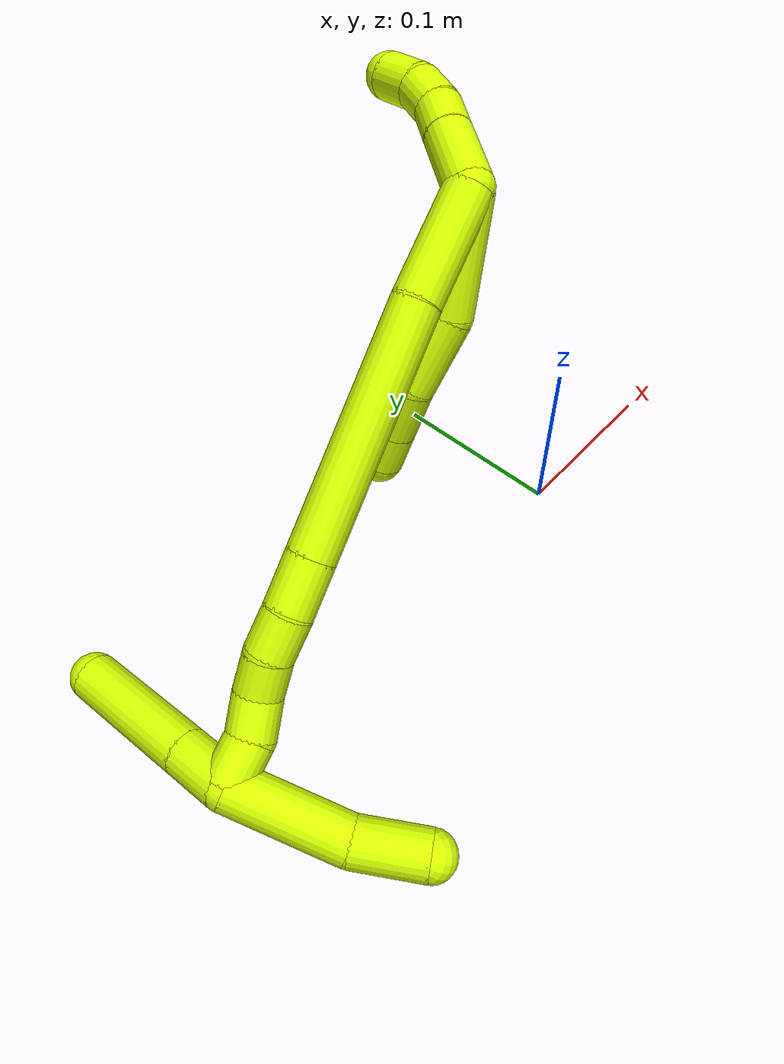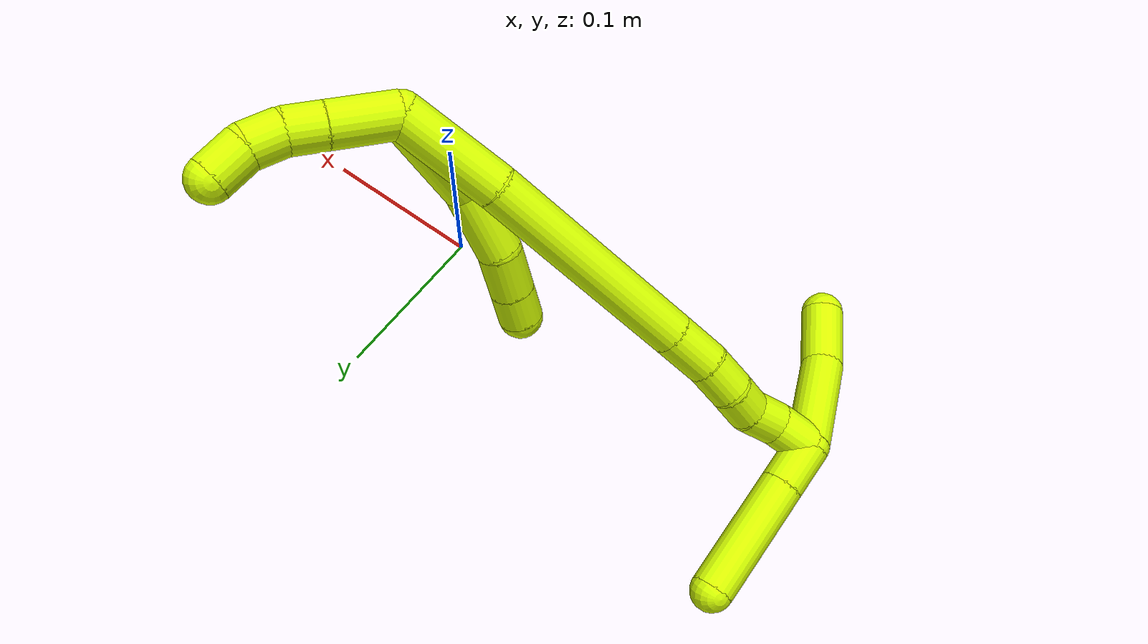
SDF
<sdf version="1.7">
 <world name="default">
  <model name="15">
   <static>0</static>
   <link name="15">
    <collision name="collision-cylinder-e_1_2_8">
     <pose>-0.027214 -0.008447 -0.011101 2.4911 -1.09714 -2.13316</pose>
     <geometry><cylinder><radius>0.0125</radius><length>0.061162</length></cylinder></geometry>
     <surface>
      <friction><ode><mu>1.16</mu><mu2>1.16</mu2><slip1>0</slip1><slip2>0</slip2></ode></friction>
      <contact><ode><kp>1e+06</kp><kd>1</kd><max_vel>0</max_vel><min_depth>0.001</min_depth></ode></contact>
     </surface>
    </collision>
    <visual name="visual-cylinder-e_1_2_8">
     <pose>-0.027214 -0.008447 -0.011101 2.4911 -1.09714 -2.13316</pose>
     <geometry><cylinder><radius>0.0125</radius><length>0.061162</length></cylinder></geometry>
     <material><ambient>0.835294 1 0 1</ambient></material>
    </visual>
    <collision name="collision-cylinder-e_2_8_9">
     <pose>-0.074361 -0.018394 -0.024673 2.59629 -1.42675 -2.51657</pose>
     <geometry><cylinder><radius>0.0125</radius><length>0.040282</length></cylinder></geometry>
     <surface>
      <friction><ode><mu>1.16</mu><mu2>1.16</mu2><slip1>0</slip1><slip2>0</slip2></ode></friction>
      <contact><ode><kp>1e+06</kp><kd>1</kd><max_vel>0</max_vel><min_depth>0.001</min_depth></ode></contact>
     </surface>
    </collision>
    <visual name="visual-cylinder-e_2_8_9">
     <pose>-0.074361 -0.018394 -0.024673 2.59629 -1.42675 -2.51657</pose>
     <geometry><cylinder><radius>0.0125</radius><length>0.040282</length></cylinder></geometry>
     <material><ambient>0.835294 1 0 1</ambient></material>
    </visual>
    <collision name="collision-cylinder-e_3_9_10">
     <pose>-0.107258 -0.019197 -0.031816 -2.99357 -1.22146 2.93054</pose>
     <geometry><cylinder><radius>0.0125</radius><length>0.027596</length></cylinder></geometry>
     <surface>
      <friction><ode><mu>1.16</mu><mu2>1.16</mu2><slip1>0</slip1><slip2>0</slip2></ode></friction>
      <contact><ode><kp>1e+06</kp><kd>1</kd><max_vel>0</max_vel><min_depth>0.001</min_depth></ode></contact>
     </surface>
    </collision>
    <visual name="visual-cylinder-e_3_9_10">
     <pose>-0.107258 -0.019197 -0.031816 -2.99357 -1.22146 2.93054</pose>
     <geometry><cylinder><radius>0.0125</radius><length>0.027596</length></cylinder></geometry>
     <material><ambient>0.835294 1 0 1</ambient></material>
    </visual>
    <collision name="collision-cylinder-e_4_10_6">
     <pose>-0.130049 -0.018033 -0.0401 -3.01275 -1.2157 2.95668</pose>
     <geometry><cylinder><radius>0.0125</radius><length>0.02096</length></cylinder></geometry>
     <surface>
      <friction><ode><mu>1.16</mu><mu2>1.16</mu2><slip1>0</slip1><slip2>0</slip2></ode></friction>
      <contact><ode><kp>1e+06</kp><kd>1</kd><max_vel>0</max_vel><min_depth>0.001</min_depth></ode></contact>
     </surface>
    </collision>
    <visual name="visual-cylinder-e_4_10_6">
     <pose>-0.130049 -0.018033 -0.0401 -3.01275 -1.2157 2.95668</pose>
     <geometry><cylinder><radius>0.0125</radius><length>0.02096</length></cylinder></geometry>
     <material><ambient>0.835294 1 0 1</ambient></material>
    </visual>
    <collision name="collision-cylinder-e_1_2_11">
     <pose>0.005889 0.017593 0.000174 -1.56088 0.32301 -0.319878</pose>
     <geometry><cylinder><radius>0.0125</radius><length>0.037107</length></cylinder></geometry>
     <surface>
      <friction><ode><mu>1.16</mu><mu2>1.16</mu2><slip1>0</slip1><slip2>0</slip2></ode></friction>
      <contact><ode><kp>1e+06</kp><kd>1</kd><max_vel>0</max_vel><min_depth>0.001</min_depth></ode></contact>
     </surface>
    </collision>
    <visual name="visual-cylinder-e_1_2_11">
     <pose>0.005889 0.017593 0.000174 -1.56088 0.32301 -0.319878</pose>
     <geometry><cylinder><radius>0.0125</radius><length>0.037107</length></cylinder></geometry>
     <material><ambient>0.835294 1 0 1</ambient></material>
    </visual>
    <collision name="collision-cylinder-e_2_11_12">
     <pose>0.014997 0.044969 0.000101 -1.59616 0.317731 -0.325751</pose>
     <geometry><cylinder><radius>0.0125</radius><length>0.020603</length></cylinder></geometry>
     <surface>
      <friction><ode><mu>1.16</mu><mu2>1.16</mu2><slip1>0</slip1><slip2>0</slip2></ode></friction>
      <contact><ode><kp>1e+06</kp><kd>1</kd><max_vel>0</max_vel><min_depth>0.001</min_depth></ode></contact>
     </surface>
    </collision>
    <visual name="visual-cylinder-e_2_11_12">
     <pose>0.014997 0.044969 0.000101 -1.59616 0.317731 -0.325751</pose>
     <geometry><cylinder><radius>0.0125</radius><length>0.020603</length></cylinder></geometry>
     <material><ambient>0.835294 1 0 1</ambient></material>
    </visual>
    <collision name="collision-cylinder-e_3_12_13">
     <pose>0.019266 0.064699 0.001225 -1.43375 0.104319 -0.090939</pose>
     <geometry><cylinder><radius>0.0125</radius><length>0.020194</length></cylinder></geometry>
     <surface>
      <friction><ode><mu>1.16</mu><mu2>1.16</mu2><slip1>0</slip1><slip2>0</slip2></ode></friction>
      <contact><ode><kp>1e+06</kp><kd>1</kd><max_vel>0</max_vel><min_depth>0.001</min_depth></ode></contact>
     </surface>
    </collision>
    <visual name="visual-cylinder-e_3_12_13">
     <pose>0.019266 0.064699 0.001225 -1.43375 0.104319 -0.090939</pose>
     <geometry><cylinder><radius>0.0125</radius><length>0.020194</length></cylinder></geometry>
     <material><ambient>0.835294 1 0 1</ambient></material>
    </visual>
    <collision name="collision-cylinder-e_4_13_5">
     <pose>0.017805 0.085233 0.004515 -1.3915 -0.229483 0.191884</pose>
     <geometry><cylinder><radius>0.0125</radius><length>0.022096</length></cylinder></geometry>
     <surface>
      <friction><ode><mu>1.16</mu><mu2>1.16</mu2><slip1>0</slip1><slip2>0</slip2></ode></friction>
      <contact><ode><kp>1e+06</kp><kd>1</kd><max_vel>0</max_vel><min_depth>0.001</min_depth></ode></contact>
     </surface>
    </collision>
    <visual name="visual-cylinder-e_4_13_5">
     <pose>0.017805 0.085233 0.004515 -1.3915 -0.229483 0.191884</pose>
     <geometry><cylinder><radius>0.0125</radius><length>0.022096</length></cylinder></geometry>
     <material><ambient>0.835294 1 0 1</ambient></material>
    </visual>
    <collision name="collision-cylinder-e_1_2_14">
     <pose>-0.026257 -0.01326 0.004369 1.25251 -1.08208 -0.820032</pose>
     <geometry><cylinder><radius>0.0125</radius><length>0.059476</length></cylinder></geometry>
     <surface>
      <friction><ode><mu>1.16</mu><mu2>1.16</mu2><slip1>0</slip1><slip2>0</slip2></ode></friction>
      <contact><ode><kp>1e+06</kp><kd>1</kd><max_vel>0</max_vel><min_depth>0.001</min_depth></ode></contact>
     </surface>
    </collision>
    <visual name="visual-cylinder-e_1_2_14">
     <pose>-0.026257 -0.01326 0.004369 1.25251 -1.08208 -0.820032</pose>
     <geometry><cylinder><radius>0.0125</radius><length>0.059476</length></cylinder></geometry>
     <material><ambient>0.835294 1 0 1</ambient></material>
    </visual>
    <collision name="collision-cylinder-e_2_14_15">
     <pose>-0.109821 -0.052425 0.012122 1.44089 -1.14308 -1.02795</pose>
     <geometry><cylinder><radius>0.0125</radius><length>0.125961</length></cylinder></geometry>
     <surface>
      <friction><ode><mu>1.16</mu><mu2>1.16</mu2><slip1>0</slip1><slip2>0</slip2></ode></friction>
      <contact><ode><kp>1e+06</kp><kd>1</kd><max_vel>0</max_vel><min_depth>0.001</min_depth></ode></contact>
     </surface>
    </collision>
    <visual name="visual-cylinder-e_2_14_15">
     <pose>-0.109821 -0.052425 0.012122 1.44089 -1.14308 -1.02795</pose>
     <geometry><cylinder><radius>0.0125</radius><length>0.125961</length></cylinder></geometry>
     <material><ambient>0.835294 1 0 1</ambient></material>
    </visual>
    <collision name="collision-cylinder-e_3_15_16">
     <pose>-0.179659 -0.083916 0.016214 1.44475 -1.14842 -1.03632</pose>
     <geometry><cylinder><radius>0.0125</radius><length>0.027478</length></cylinder></geometry>
     <surface>
      <friction><ode><mu>1.16</mu><mu2>1.16</mu2><slip1>0</slip1><slip2>0</slip2></ode></friction>
      <contact><ode><kp>1e+06</kp><kd>1</kd><max_vel>0</max_vel><min_depth>0.001</min_depth></ode></contact>
     </surface>
    </collision>
    <visual name="visual-cylinder-e_3_15_16">
     <pose>-0.179659 -0.083916 0.016214 1.44475 -1.14842 -1.03632</pose>
     <geometry><cylinder><radius>0.0125</radius><length>0.027478</length></cylinder></geometry>
     <material><ambient>0.835294 1 0 1</ambient></material>
    </visual>
    <collision name="collision-cylinder-e_4_16_17">
     <pose>-0.202802 -0.092843 0.016897 1.57842 -1.26585 -1.27313</pose>
     <geometry><cylinder><radius>0.0125</radius><length>0.022248</length></cylinder></geometry>
     <surface>
      <friction><ode><mu>1.16</mu><mu2>1.16</mu2><slip1>0</slip1><slip2>0</slip2></ode></friction>
      <contact><ode><kp>1e+06</kp><kd>1</kd><max_vel>0</max_vel><min_depth>0.001</min_depth></ode></contact>
     </surface>
    </collision>
    <visual name="visual-cylinder-e_4_16_17">
     <pose>-0.202802 -0.092843 0.016897 1.57842 -1.26585 -1.27313</pose>
     <geometry><cylinder><radius>0.0125</radius><length>0.022248</length></cylinder></geometry>
     <material><ambient>0.835294 1 0 1</ambient></material>
    </visual>
    <collision name="collision-cylinder-e_5_17_18">
     <pose>-0.22289 -0.099163 0.014846 2.16758 -1.20749 -1.83193</pose>
     <geometry><cylinder><radius>0.0125</radius><length>0.020279</length></cylinder></geometry>
     <surface>
      <friction><ode><mu>1.16</mu><mu2>1.16</mu2><slip1>0</slip1><slip2>0</slip2></ode></friction>
      <contact><ode><kp>1e+06</kp><kd>1</kd><max_vel>0</max_vel><min_depth>0.001</min_depth></ode></contact>
     </surface>
    </collision>
    <visual name="visual-cylinder-e_5_17_18">
     <pose>-0.22289 -0.099163 0.014846 2.16758 -1.20749 -1.83193</pose>
     <geometry><cylinder><radius>0.0125</radius><length>0.020279</length></cylinder></geometry>
     <material><ambient>0.835294 1 0 1</ambient></material>
    </visual>
    <collision name="collision-cylinder-e_6_18_19">
     <pose>-0.240849 -0.108265 0.012109 1.68662 -0.94238 -1.03941</pose>
     <geometry><cylinder><radius>0.0125</radius><length>0.020967</length></cylinder></geometry>
     <surface>
      <friction><ode><mu>1.16</mu><mu2>1.16</mu2><slip1>0</slip1><slip2>0</slip2></ode></friction>
      <contact><ode><kp>1e+06</kp><kd>1</kd><max_vel>0</max_vel><min_depth>0.001</min_depth></ode></contact>
     </surface>
    </collision>
    <visual name="visual-cylinder-e_6_18_19">
     <pose>-0.240849 -0.108265 0.012109 1.68662 -0.94238 -1.03941</pose>
     <geometry><cylinder><radius>0.0125</radius><length>0.020967</length></cylinder></geometry>
     <material><ambient>0.835294 1 0 1</ambient></material>
    </visual>
    <collision name="collision-cylinder-e_7_19_1">
     <pose>-0.259357 -0.119941 0.014178 1.10651 -1.01619 -0.66248</pose>
     <geometry><cylinder><radius>0.0125</radius><length>0.02359</length></cylinder></geometry>
     <surface>
      <friction><ode><mu>1.16</mu><mu2>1.16</mu2><slip1>0</slip1><slip2>0</slip2></ode></friction>
      <contact><ode><kp>1e+06</kp><kd>1</kd><max_vel>0</max_vel><min_depth>0.001</min_depth></ode></contact>
     </surface>
    </collision>
    <visual name="visual-cylinder-e_7_19_1">
     <pose>-0.259357 -0.119941 0.014178 1.10651 -1.01619 -0.66248</pose>
     <geometry><cylinder><radius>0.0125</radius><length>0.02359</length></cylinder></geometry>
     <material><ambient>0.835294 1 0 1</ambient></material>
    </visual>
    <collision name="collision-cylinder-e_1_1_20">
     <pose>-0.274044 -0.112659 0.020644 -1.29127 -0.335757 0.253967</pose>
     <geometry><cylinder><radius>0.0125</radius><length>0.028289</length></cylinder></geometry>
     <surface>
      <friction><ode><mu>1.16</mu><mu2>1.16</mu2><slip1>0</slip1><slip2>0</slip2></ode></friction>
      <contact><ode><kp>1e+06</kp><kd>1</kd><max_vel>0</max_vel><min_depth>0.001</min_depth></ode></contact>
     </surface>
    </collision>
    <visual name="visual-cylinder-e_1_1_20">
     <pose>-0.274044 -0.112659 0.020644 -1.29127 -0.335757 0.253967</pose>
     <geometry><cylinder><radius>0.0125</radius><length>0.028289</length></cylinder></geometry>
     <material><ambient>0.835294 1 0 1</ambient></material>
    </visual>
    <collision name="collision-cylinder-e_2_20_4">
     <pose>-0.290509 -0.06729 0.033704 -1.29021 -0.335477 0.253479</pose>
     <geometry><cylinder><radius>0.0125</radius><length>0.071711</length></cylinder></geometry>
     <surface>
      <friction><ode><mu>1.16</mu><mu2>1.16</mu2><slip1>0</slip1><slip2>0</slip2></ode></friction>
      <contact><ode><kp>1e+06</kp><kd>1</kd><max_vel>0</max_vel><min_depth>0.001</min_depth></ode></contact>
     </surface>
    </collision>
    <visual name="visual-cylinder-e_2_20_4">
     <pose>-0.290509 -0.06729 0.033704 -1.29021 -0.335477 0.253479</pose>
     <geometry><cylinder><radius>0.0125</radius><length>0.071711</length></cylinder></geometry>
     <material><ambient>0.835294 1 0 1</ambient></material>
    </visual>
    <collision name="collision-cylinder-e_1_1_21">
     <pose>-0.261955 -0.146162 -0.005287 2.39298 0.239949 0.59553</pose>
     <geometry><cylinder><radius>0.0125</radius><length>0.062523</length></cylinder></geometry>
     <surface>
      <friction><ode><mu>1.16</mu><mu2>1.16</mu2><slip1>0</slip1><slip2>0</slip2></ode></friction>
      <contact><ode><kp>1e+06</kp><kd>1</kd><max_vel>0</max_vel><min_depth>0.001</min_depth></ode></contact>
     </surface>
    </collision>
    <visual name="visual-cylinder-e_1_1_21">
     <pose>-0.261955 -0.146162 -0.005287 2.39298 0.239949 0.59553</pose>
     <geometry><cylinder><radius>0.0125</radius><length>0.062523</length></cylinder></geometry>
     <material><ambient>0.835294 1 0 1</ambient></material>
    </visual>
    <collision name="collision-cylinder-e_2_21_3">
     <pose>-0.245266 -0.177565 -0.039788 2.42215 0.516846 1.22528</pose>
     <geometry><cylinder><radius>0.0125</radius><length>0.037477</length></cylinder></geometry>
     <surface>
      <friction><ode><mu>1.16</mu><mu2>1.16</mu2><slip1>0</slip1><slip2>0</slip2></ode></friction>
      <contact><ode><kp>1e+06</kp><kd>1</kd><max_vel>0</max_vel><min_depth>0.001</min_depth></ode></contact>
     </surface>
    </collision>
    <visual name="visual-cylinder-e_2_21_3">
     <pose>-0.245266 -0.177565 -0.039788 2.42215 0.516846 1.22528</pose>
     <geometry><cylinder><radius>0.0125</radius><length>0.037477</length></cylinder></geometry>
     <material><ambient>0.835294 1 0 1</ambient></material>
    </visual>
    <collision name="collision-sphere-3">
     <pose>-0.236006 -0.1883 -0.052042 0 -0 0</pose>
     <geometry><sphere><radius>0.0125</radius></sphere></geometry>
     <surface>
      <friction><ode><mu>1.16</mu><mu2>1.16</mu2><slip1>0</slip1><slip2>0</slip2></ode></friction>
      <contact><ode><kp>1e+06</kp><kd>1</kd><max_vel>0</max_vel><min_depth>0.001</min_depth></ode></contact>
     </surface>
    </collision>
    <visual name="visual-sphere-3">
     <pose>-0.236006 -0.1883 -0.052042 0 -0 0</pose>
     <geometry><sphere><radius>0.0125</radius></sphere></geometry>
     <material><ambient>0.835294 1 0 1</ambient></material>
    </visual>
    <collision name="collision-sphere-21">
     <pose>-0.254525 -0.16683 -0.027534 0 -0 0</pose>
     <geometry><sphere><radius>0.0125</radius></sphere></geometry>
     <surface>
      <friction><ode><mu>1.16</mu><mu2>1.16</mu2><slip1>0</slip1><slip2>0</slip2></ode></friction>
      <contact><ode><kp>1e+06</kp><kd>1</kd><max_vel>0</max_vel><min_depth>0.001</min_depth></ode></contact>
     </surface>
    </collision>
    <visual name="visual-sphere-21">
     <pose>-0.254525 -0.16683 -0.027534 0 -0 0</pose>
     <geometry><sphere><radius>0.0125</radius></sphere></geometry>
     <material><ambient>0.835294 1 0 1</ambient></material>
    </visual>
    <collision name="collision-sphere-4">
     <pose>-0.302313 -0.034757 0.04308 0 -0 0</pose>
     <geometry><sphere><radius>0.0125</radius></sphere></geometry>
     <surface>
      <friction><ode><mu>1.16</mu><mu2>1.16</mu2><slip1>0</slip1><slip2>0</slip2></ode></friction>
      <contact><ode><kp>1e+06</kp><kd>1</kd><max_vel>0</max_vel><min_depth>0.001</min_depth></ode></contact>
     </surface>
    </collision>
    <visual name="visual-sphere-4">
     <pose>-0.302313 -0.034757 0.04308 0 -0 0</pose>
     <geometry><sphere><radius>0.0125</radius></sphere></geometry>
     <material><ambient>0.835294 1 0 1</ambient></material>
    </visual>
    <collision name="collision-sphere-20">
     <pose>-0.278705 -0.099822 0.024329 0 -0 0</pose>
     <geometry><sphere><radius>0.0125</radius></sphere></geometry>
     <surface>
      <friction><ode><mu>1.16</mu><mu2>1.16</mu2><slip1>0</slip1><slip2>0</slip2></ode></friction>
      <contact><ode><kp>1e+06</kp><kd>1</kd><max_vel>0</max_vel><min_depth>0.001</min_depth></ode></contact>
     </surface>
    </collision>
    <visual name="visual-sphere-20">
     <pose>-0.278705 -0.099822 0.024329 0 -0 0</pose>
     <geometry><sphere><radius>0.0125</radius></sphere></geometry>
     <material><ambient>0.835294 1 0 1</ambient></material>
    </visual>
    <collision name="collision-sphere-11">
     <pose>0.011779 0.035186 0.000349 0 -0 0</pose>
     <geometry><sphere><radius>0.0125</radius></sphere></geometry>
     <surface>
      <friction><ode><mu>1.16</mu><mu2>1.16</mu2><slip1>0</slip1><slip2>0</slip2></ode></friction>
      <contact><ode><kp>1e+06</kp><kd>1</kd><max_vel>0</max_vel><min_depth>0.001</min_depth></ode></contact>
     </surface>
    </collision>
    <visual name="visual-sphere-11">
     <pose>0.011779 0.035186 0.000349 0 -0 0</pose>
     <geometry><sphere><radius>0.0125</radius></sphere></geometry>
     <material><ambient>0.835294 1 0 1</ambient></material>
    </visual>
    <collision name="collision-sphere-6">
     <pose>-0.139875 -0.017564 -0.043714 0 -0 0</pose>
     <geometry><sphere><radius>0.0125</radius></sphere></geometry>
     <surface>
      <friction><ode><mu>1.16</mu><mu2>1.16</mu2><slip1>0</slip1><slip2>0</slip2></ode></friction>
      <contact><ode><kp>1e+06</kp><kd>1</kd><max_vel>0</max_vel><min_depth>0.001</min_depth></ode></contact>
     </surface>
    </collision>
    <visual name="visual-sphere-6">
     <pose>-0.139875 -0.017564 -0.043714 0 -0 0</pose>
     <geometry><sphere><radius>0.0125</radius></sphere></geometry>
     <material><ambient>0.835294 1 0 1</ambient></material>
    </visual>
    <collision name="collision-sphere-10">
     <pose>-0.120222 -0.018501 -0.036487 0 -0 0</pose>
     <geometry><sphere><radius>0.0125</radius></sphere></geometry>
     <surface>
      <friction><ode><mu>1.16</mu><mu2>1.16</mu2><slip1>0</slip1><slip2>0</slip2></ode></friction>
      <contact><ode><kp>1e+06</kp><kd>1</kd><max_vel>0</max_vel><min_depth>0.001</min_depth></ode></contact>
     </surface>
    </collision>
    <visual name="visual-sphere-10">
     <pose>-0.120222 -0.018501 -0.036487 0 -0 0</pose>
     <geometry><sphere><radius>0.0125</radius></sphere></geometry>
     <material><ambient>0.835294 1 0 1</ambient></material>
    </visual>
    <collision name="collision-sphere-9">
     <pose>-0.094293 -0.019894 -0.027145 0 -0 0</pose>
     <geometry><sphere><radius>0.0125</radius></sphere></geometry>
     <surface>
      <friction><ode><mu>1.16</mu><mu2>1.16</mu2><slip1>0</slip1><slip2>0</slip2></ode></friction>
      <contact><ode><kp>1e+06</kp><kd>1</kd><max_vel>0</max_vel><min_depth>0.001</min_depth></ode></contact>
     </surface>
    </collision>
    <visual name="visual-sphere-9">
     <pose>-0.094293 -0.019894 -0.027145 0 -0 0</pose>
     <geometry><sphere><radius>0.0125</radius></sphere></geometry>
     <material><ambient>0.835294 1 0 1</ambient></material>
    </visual>
    <collision name="collision-sphere-2">
     <geometry><sphere><radius>0.0125</radius></sphere></geometry>
     <surface>
      <friction><ode><mu>1.16</mu><mu2>1.16</mu2><slip1>0</slip1><slip2>0</slip2></ode></friction>
      <contact><ode><kp>1e+06</kp><kd>1</kd><max_vel>0</max_vel><min_depth>0.001</min_depth></ode></contact>
     </surface>
    </collision>
    <visual name="visual-sphere-2">
     <geometry><sphere><radius>0.0125</radius></sphere></geometry>
     <material><ambient>0.835294 1 0 1</ambient></material>
    </visual>
    <collision name="collision-sphere-19">
     <pose>-0.24933 -0.114387 0.011397 0 -0 0</pose>
     <geometry><sphere><radius>0.0125</radius></sphere></geometry>
     <surface>
      <friction><ode><mu>1.16</mu><mu2>1.16</mu2><slip1>0</slip1><slip2>0</slip2></ode></friction>
      <contact><ode><kp>1e+06</kp><kd>1</kd><max_vel>0</max_vel><min_depth>0.001</min_depth></ode></contact>
     </surface>
    </collision>
    <visual name="visual-sphere-19">
     <pose>-0.24933 -0.114387 0.011397 0 -0 0</pose>
     <geometry><sphere><radius>0.0125</radius></sphere></geometry>
     <material><ambient>0.835294 1 0 1</ambient></material>
    </visual>
    <collision name="collision-sphere-8">
     <pose>-0.054428 -0.016895 -0.022201 0 -0 0</pose>
     <geometry><sphere><radius>0.0125</radius></sphere></geometry>
     <surface>
      <friction><ode><mu>1.16</mu><mu2>1.16</mu2><slip1>0</slip1><slip2>0</slip2></ode></friction>
      <contact><ode><kp>1e+06</kp><kd>1</kd><max_vel>0</max_vel><min_depth>0.001</min_depth></ode></contact>
     </surface>
    </collision>
    <visual name="visual-sphere-8">
     <pose>-0.054428 -0.016895 -0.022201 0 -0 0</pose>
     <geometry><sphere><radius>0.0125</radius></sphere></geometry>
     <material><ambient>0.835294 1 0 1</ambient></material>
    </visual>
    <collision name="collision-sphere-12">
     <pose>0.018215 0.054751 -0.000147 0 -0 0</pose>
     <geometry><sphere><radius>0.0125</radius></sphere></geometry>
     <surface>
      <friction><ode><mu>1.16</mu><mu2>1.16</mu2><slip1>0</slip1><slip2>0</slip2></ode></friction>
      <contact><ode><kp>1e+06</kp><kd>1</kd><max_vel>0</max_vel><min_depth>0.001</min_depth></ode></contact>
     </surface>
    </collision>
    <visual name="visual-sphere-12">
     <pose>0.018215 0.054751 -0.000147 0 -0 0</pose>
     <geometry><sphere><radius>0.0125</radius></sphere></geometry>
     <material><ambient>0.835294 1 0 1</ambient></material>
    </visual>
    <collision name="collision-sphere-13">
     <pose>0.020318 0.074647 0.002596 0 -0 0</pose>
     <geometry><sphere><radius>0.0125</radius></sphere></geometry>
     <surface>
      <friction><ode><mu>1.16</mu><mu2>1.16</mu2><slip1>0</slip1><slip2>0</slip2></ode></friction>
      <contact><ode><kp>1e+06</kp><kd>1</kd><max_vel>0</max_vel><min_depth>0.001</min_depth></ode></contact>
     </surface>
    </collision>
    <visual name="visual-sphere-13">
     <pose>0.020318 0.074647 0.002596 0 -0 0</pose>
     <geometry><sphere><radius>0.0125</radius></sphere></geometry>
     <material><ambient>0.835294 1 0 1</ambient></material>
    </visual>
    <collision name="collision-sphere-5">
     <pose>0.015292 0.095819 0.006434 0 -0 0</pose>
     <geometry><sphere><radius>0.0125</radius></sphere></geometry>
     <surface>
      <friction><ode><mu>1.16</mu><mu2>1.16</mu2><slip1>0</slip1><slip2>0</slip2></ode></friction>
      <contact><ode><kp>1e+06</kp><kd>1</kd><max_vel>0</max_vel><min_depth>0.001</min_depth></ode></contact>
     </surface>
    </collision>
    <visual name="visual-sphere-5">
     <pose>0.015292 0.095819 0.006434 0 -0 0</pose>
     <geometry><sphere><radius>0.0125</radius></sphere></geometry>
     <material><ambient>0.835294 1 0 1</ambient></material>
    </visual>
    <collision name="collision-sphere-14">
     <pose>-0.052514 -0.026521 0.008738 0 -0 0</pose>
     <geometry><sphere><radius>0.0125</radius></sphere></geometry>
     <surface>
      <friction><ode><mu>1.16</mu><mu2>1.16</mu2><slip1>0</slip1><slip2>0</slip2></ode></friction>
      <contact><ode><kp>1e+06</kp><kd>1</kd><max_vel>0</max_vel><min_depth>0.001</min_depth></ode></contact>
     </surface>
    </collision>
    <visual name="visual-sphere-14">
     <pose>-0.052514 -0.026521 0.008738 0 -0 0</pose>
     <geometry><sphere><radius>0.0125</radius></sphere></geometry>
     <material><ambient>0.835294 1 0 1</ambient></material>
    </visual>
    <collision name="collision-sphere-15">
     <pose>-0.167128 -0.078329 0.015506 0 -0 0</pose>
     <geometry><sphere><radius>0.0125</radius></sphere></geometry>
     <surface>
      <friction><ode><mu>1.16</mu><mu2>1.16</mu2><slip1>0</slip1><slip2>0</slip2></ode></friction>
      <contact><ode><kp>1e+06</kp><kd>1</kd><max_vel>0</max_vel><min_depth>0.001</min_depth></ode></contact>
     </surface>
    </collision>
    <visual name="visual-sphere-15">
     <pose>-0.167128 -0.078329 0.015506 0 -0 0</pose>
     <geometry><sphere><radius>0.0125</radius></sphere></geometry>
     <material><ambient>0.835294 1 0 1</ambient></material>
    </visual>
    <collision name="collision-sphere-16">
     <pose>-0.192191 -0.089503 0.016922 0 -0 0</pose>
     <geometry><sphere><radius>0.0125</radius></sphere></geometry>
     <surface>
      <friction><ode><mu>1.16</mu><mu2>1.16</mu2><slip1>0</slip1><slip2>0</slip2></ode></friction>
      <contact><ode><kp>1e+06</kp><kd>1</kd><max_vel>0</max_vel><min_depth>0.001</min_depth></ode></contact>
     </surface>
    </collision>
    <visual name="visual-sphere-16">
     <pose>-0.192191 -0.089503 0.016922 0 -0 0</pose>
     <geometry><sphere><radius>0.0125</radius></sphere></geometry>
     <material><ambient>0.835294 1 0 1</ambient></material>
    </visual>
    <collision name="collision-sphere-17">
     <pose>-0.213413 -0.096183 0.016871 0 -0 0</pose>
     <geometry><sphere><radius>0.0125</radius></sphere></geometry>
     <surface>
      <friction><ode><mu>1.16</mu><mu2>1.16</mu2><slip1>0</slip1><slip2>0</slip2></ode></friction>
      <contact><ode><kp>1e+06</kp><kd>1</kd><max_vel>0</max_vel><min_depth>0.001</min_depth></ode></contact>
     </surface>
    </collision>
    <visual name="visual-sphere-17">
     <pose>-0.213413 -0.096183 0.016871 0 -0 0</pose>
     <geometry><sphere><radius>0.0125</radius></sphere></geometry>
     <material><ambient>0.835294 1 0 1</ambient></material>
    </visual>
    <collision name="collision-sphere-18">
     <pose>-0.232368 -0.102144 0.012821 0 -0 0</pose>
     <geometry><sphere><radius>0.0125</radius></sphere></geometry>
     <surface>
      <friction><ode><mu>1.16</mu><mu2>1.16</mu2><slip1>0</slip1><slip2>0</slip2></ode></friction>
      <contact><ode><kp>1e+06</kp><kd>1</kd><max_vel>0</max_vel><min_depth>0.001</min_depth></ode></contact>
     </surface>
    </collision>
    <visual name="visual-sphere-18">
     <pose>-0.232368 -0.102144 0.012821 0 -0 0</pose>
     <geometry><sphere><radius>0.0125</radius></sphere></geometry>
     <material><ambient>0.835294 1 0 1</ambient></material>
    </visual>
    <collision name="collision-sphere-1">
     <pose>-0.269384 -0.125495 0.01696 0 -0 0</pose>
     <geometry><sphere><radius>0.0125</radius></sphere></geometry>
     <surface>
      <friction><ode><mu>1.16</mu><mu2>1.16</mu2><slip1>0</slip1><slip2>0</slip2></ode></friction>
      <contact><ode><kp>1e+06</kp><kd>1</kd><max_vel>0</max_vel><min_depth>0.001</min_depth></ode></contact>
     </surface>
    </collision>
    <visual name="visual-sphere-1">
     <pose>-0.269384 -0.125495 0.01696 0 -0 0</pose>
     <geometry><sphere><radius>0.0125</radius></sphere></geometry>
     <material><ambient>0.835294 1 0 1</ambient></material>
    </visual>
    <inertial>
     <pose>-0.138297 -0.053434 0.001892 0 -0 0</pose>
     <mass>0.75</mass>
     <inertia>
      <ixx>1.4e-05</ixx>
      <ixy>0</ixy>
      <ixz>0</ixz>
      <iyy>0.000144</iyy>
      <iyz>0</iyz>
      <izz>0.000274</izz>
     </inertia>
    </inertial>
   </link>
   <pose>-0.022147 0.052163 0.205181 -0.127768 -0.837742 -0.30349</pose>
  </model>
 </world>
</sdf>
